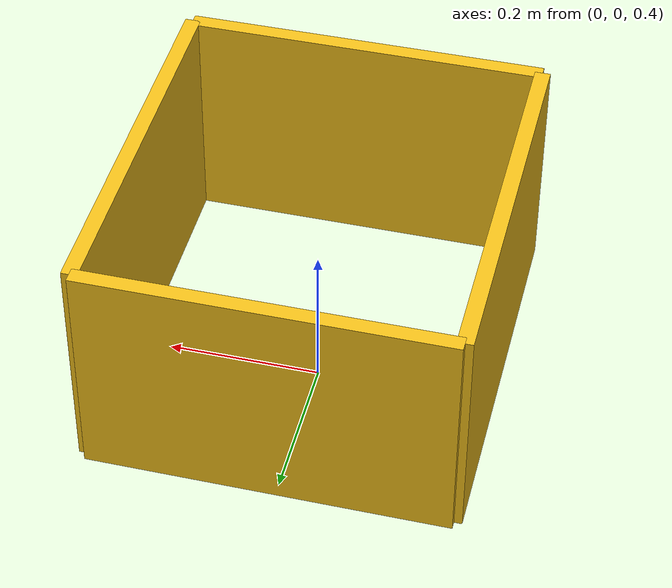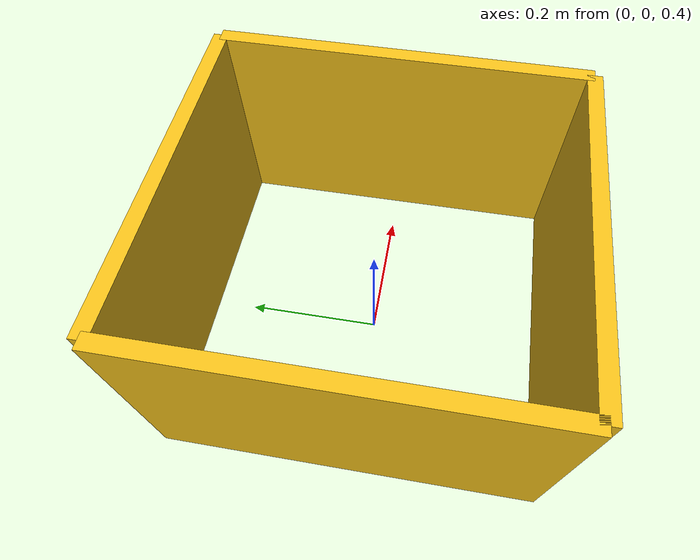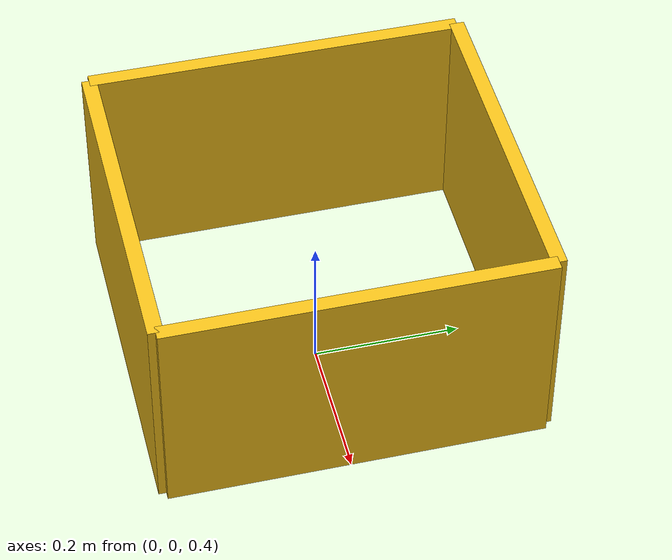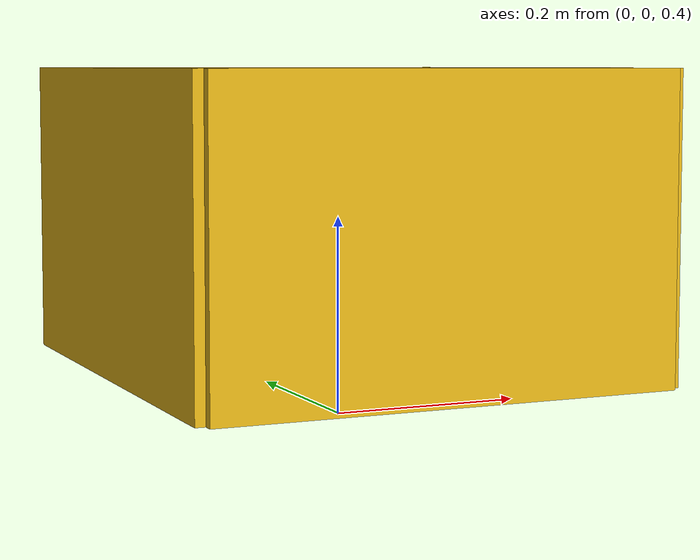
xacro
<?xml version="1.0"?>
<robot name="box_factory" xmlns:xacro="http://ros.org/xacro">

  <xacro:arg name="parent" default="world" />
  <xacro:arg name="xyz" default="0 0 0" />
  <xacro:arg name="rpy" default="0 0 0" />
  <xacro:arg name="chute_width" default="0.46" />
  <xacro:arg name="chute_depth" default="0.50" />
  <xacro:arg name="chute_height" default="0.30" />
  <xacro:arg name="clearance" default="0.45" />
  <xacro:arg name="namespace" default="" />

  <xacro:include filename="$(find box_factory_description)/urdf/box_factory_macro.xacro" />

  <!-- 2. "world" root link only when parented to it (same pattern as
       group_a_description / conveyor_description). -->
  <xacro:if value="${'$(arg parent)' == 'world'}">
    <link name="world" />
  </xacro:if>

  <xacro:box_factory
    parent="$(arg parent)"
    chute_width="$(arg chute_width)"
    chute_depth="$(arg chute_depth)"
    chute_height="$(arg chute_height)"
    clearance="$(arg clearance)"
  >
    <origin xyz="$(arg xyz)" rpy="$(arg rpy)" />
  </xacro:box_factory>

</robot>

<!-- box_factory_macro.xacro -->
<robot xmlns:xacro="http://www.ros.org/wiki/xacro">

    <!-- Top-level (not nested) - xacro registers macros globally, so one
         defined inside box_factory would be re-declared per instance (same
         reason as conveyor_macro.xacro's roller macros). -->
    <xacro:macro name="box_factory_chute_wall" params="name x y sx sy sz">
        <visual name="${name}">
            <origin xyz="${x} ${y} 0" rpy="0 0 0" />
            <geometry>
                <box size="${sx} ${sy} ${sz}" />
            </geometry>
            <material name="factory_yellow">
                <color rgba="0.95 0.75 0.10 1.0" />
            </material>
        </visual>
    </xacro:macro>

    <xacro:macro name="box_factory" params="parent chute_width chute_depth chute_height clearance *origin">

        <xacro:property name="wall" value="0.02" />
        <xacro:property name="chute_z" value="${clearance + chute_height / 2.0}" />

        <link name="outlet" />

        <joint name="outlet_joint" type="fixed">
            <parent link="${parent}" />
            <child link="outlet" />
            <xacro:insert_block name="origin" />
        </joint>

        <link name="base_link">
            <xacro:box_factory_chute_wall name="wall_pos_x" x="${chute_width / 2.0}" y="0" sx="${wall}" sy="${chute_depth}" sz="${chute_height}" />
            <xacro:box_factory_chute_wall name="wall_neg_x" x="${-chute_width / 2.0}" y="0" sx="${wall}" sy="${chute_depth}" sz="${chute_height}" />
            <xacro:box_factory_chute_wall name="wall_pos_y" x="0" y="${chute_depth / 2.0}" sx="${chute_width}" sy="${wall}" sz="${chute_height}" />
            <xacro:box_factory_chute_wall name="wall_neg_y" x="0" y="${-chute_depth / 2.0}" sx="${chute_width}" sy="${wall}" sz="${chute_height}" />
            <inertial>
                <mass value="1.0" />
                <inertia ixx="0.01" ixy="0" ixz="0" iyy="0.01" iyz="0" izz="0.01" />
            </inertial>
        </link>

        <joint name="base_joint" type="fixed">
            <parent link="outlet" />
            <child link="base_link" />
            <origin xyz="0 0 ${chute_z}" rpy="0 0 0" />
        </joint>

        <gazebo>
            <static>true</static>
        </gazebo>
    </xacro:macro>
</robot>
